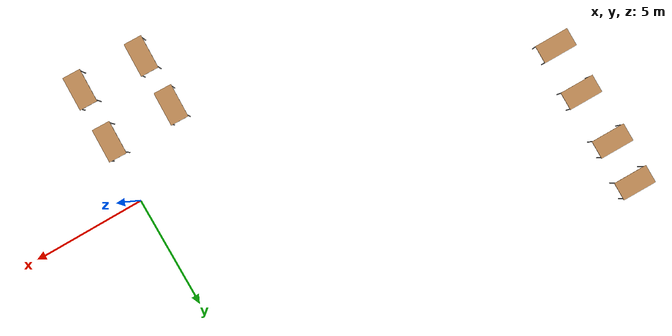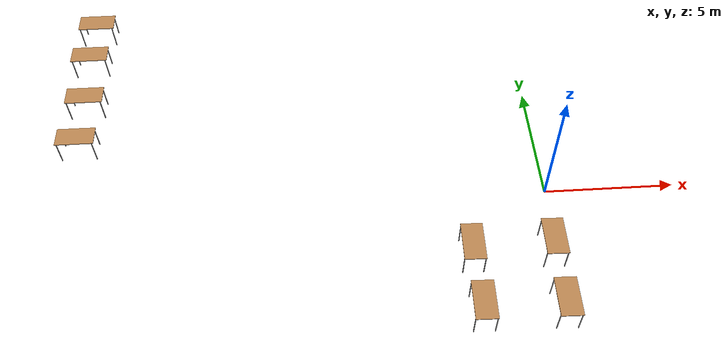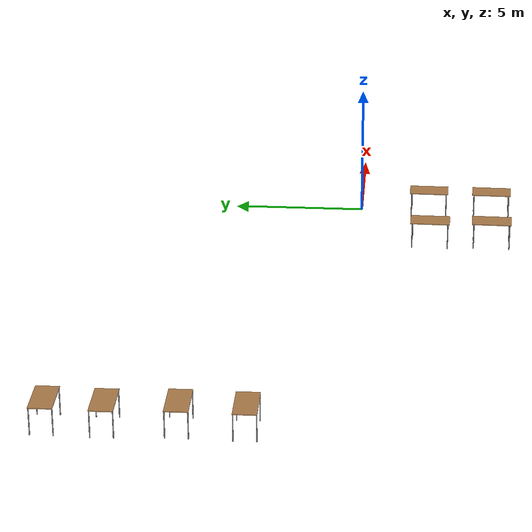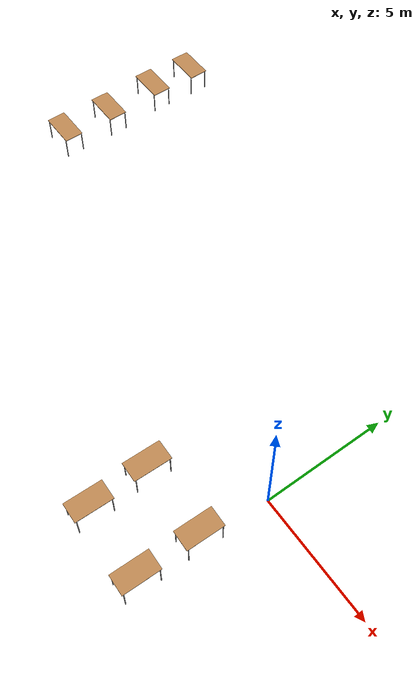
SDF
<sdf version="1.6">
 <model name="building">
  <model name="table">
   <static>1</static>
   <link name="link">
    <collision name="surface">
     <pose>0 0 1 0 -0 0</pose>
     <geometry><box><size>1.5 0.8 0.03</size></box></geometry>
     <surface><friction><ode><mu>0.6</mu><mu2>0.6</mu2></ode></friction></surface>
    </collision>
    <visual name="visual1">
     <pose>0 0 1 0 -0 0</pose>
     <geometry><box><size>1.5 0.8 0.03</size></box></geometry>
     <material>
      <script><uri>file://media/materials/scripts/gazebo.material</uri><name>Gazebo/Wood</name></script>
     </material>
    </visual>
    <collision name="front_left_leg">
     <pose>0.68 0.38 0.5 0 -0 0</pose>
     <geometry><cylinder><radius>0.02</radius><length>1</length></cylinder></geometry>
    </collision>
    <visual name="front_left_leg">
     <pose>0.68 0.38 0.5 0 -0 0</pose>
     <geometry><cylinder><radius>0.02</radius><length>1</length></cylinder></geometry>
     <material>
      <script><uri>file://media/materials/scripts/gazebo.material</uri><name>Gazebo/Grey</name></script>
     </material>
    </visual>
    <collision name="front_right_leg">
     <pose>0.68 -0.38 0.5 0 -0 0</pose>
     <geometry><cylinder><radius>0.02</radius><length>1</length></cylinder></geometry>
    </collision>
    <visual name="front_right_leg">
     <pose>0.68 -0.38 0.5 0 -0 0</pose>
     <geometry><cylinder><radius>0.02</radius><length>1</length></cylinder></geometry>
     <material>
      <script><uri>file://media/materials/scripts/gazebo.material</uri><name>Gazebo/Grey</name></script>
     </material>
    </visual>
    <collision name="back_right_leg">
     <pose>-0.68 -0.38 0.5 0 -0 0</pose>
     <geometry><cylinder><radius>0.02</radius><length>1</length></cylinder></geometry>
    </collision>
    <visual name="back_right_leg">
     <pose>-0.68 -0.38 0.5 0 -0 0</pose>
     <geometry><cylinder><radius>0.02</radius><length>1</length></cylinder></geometry>
     <material>
      <script><uri>file://media/materials/scripts/gazebo.material</uri><name>Gazebo/Grey</name></script>
     </material>
    </visual>
    <collision name="back_left_leg">
     <pose>-0.68 0.38 0.5 0 -0 0</pose>
     <geometry><cylinder><radius>0.02</radius><length>1</length></cylinder></geometry>
    </collision>
    <visual name="back_left_leg">
     <pose>-0.68 0.38 0.5 0 -0 0</pose>
     <geometry><cylinder><radius>0.02</radius><length>1</length></cylinder></geometry>
     <material>
      <script><uri>file://media/materials/scripts/gazebo.material</uri><name>Gazebo/Grey</name></script>
     </material>
    </visual>
   </link>
   <pose>-18.1294 9.58037 0 0 -0 0</pose>
  </model>
  <model name="table_0">
   <static>1</static>
   <link name="link">
    <collision name="surface">
     <pose>0 0 1 0 -0 0</pose>
     <geometry><box><size>1.5 0.8 0.03</size></box></geometry>
     <surface><friction><ode><mu>0.6</mu><mu2>0.6</mu2></ode></friction></surface>
    </collision>
    <visual name="visual1">
     <pose>0 0 1 0 -0 0</pose>
     <geometry><box><size>1.5 0.8 0.03</size></box></geometry>
     <material>
      <script><uri>file://media/materials/scripts/gazebo.material</uri><name>Gazebo/Wood</name></script>
     </material>
    </visual>
    <collision name="front_left_leg">
     <pose>0.68 0.38 0.5 0 -0 0</pose>
     <geometry><cylinder><radius>0.02</radius><length>1</length></cylinder></geometry>
    </collision>
    <visual name="front_left_leg">
     <pose>0.68 0.38 0.5 0 -0 0</pose>
     <geometry><cylinder><radius>0.02</radius><length>1</length></cylinder></geometry>
     <material>
      <script><uri>file://media/materials/scripts/gazebo.material</uri><name>Gazebo/Grey</name></script>
     </material>
    </visual>
    <collision name="front_right_leg">
     <pose>0.68 -0.38 0.5 0 -0 0</pose>
     <geometry><cylinder><radius>0.02</radius><length>1</length></cylinder></geometry>
    </collision>
    <visual name="front_right_leg">
     <pose>0.68 -0.38 0.5 0 -0 0</pose>
     <geometry><cylinder><radius>0.02</radius><length>1</length></cylinder></geometry>
     <material>
      <script><uri>file://media/materials/scripts/gazebo.material</uri><name>Gazebo/Grey</name></script>
     </material>
    </visual>
    <collision name="back_right_leg">
     <pose>-0.68 -0.38 0.5 0 -0 0</pose>
     <geometry><cylinder><radius>0.02</radius><length>1</length></cylinder></geometry>
    </collision>
    <visual name="back_right_leg">
     <pose>-0.68 -0.38 0.5 0 -0 0</pose>
     <geometry><cylinder><radius>0.02</radius><length>1</length></cylinder></geometry>
     <material>
      <script><uri>file://media/materials/scripts/gazebo.material</uri><name>Gazebo/Grey</name></script>
     </material>
    </visual>
    <collision name="back_left_leg">
     <pose>-0.68 0.38 0.5 0 -0 0</pose>
     <geometry><cylinder><radius>0.02</radius><length>1</length></cylinder></geometry>
    </collision>
    <visual name="back_left_leg">
     <pose>-0.68 0.38 0.5 0 -0 0</pose>
     <geometry><cylinder><radius>0.02</radius><length>1</length></cylinder></geometry>
     <material>
      <script><uri>file://media/materials/scripts/gazebo.material</uri><name>Gazebo/Grey</name></script>
     </material>
    </visual>
   </link>
   <pose>-18.188 7.6387 0 0 -0 0</pose>
  </model>
  <model name="table_1">
   <static>1</static>
   <link name="link">
    <collision name="surface">
     <pose>0 0 1 0 -0 0</pose>
     <geometry><box><size>1.5 0.8 0.03</size></box></geometry>
     <surface><friction><ode><mu>0.6</mu><mu2>0.6</mu2></ode></friction></surface>
    </collision>
    <visual name="visual1">
     <pose>0 0 1 0 -0 0</pose>
     <geometry><box><size>1.5 0.8 0.03</size></box></geometry>
     <material>
      <script><uri>file://media/materials/scripts/gazebo.material</uri><name>Gazebo/Wood</name></script>
     </material>
    </visual>
    <collision name="front_left_leg">
     <pose>0.68 0.38 0.5 0 -0 0</pose>
     <geometry><cylinder><radius>0.02</radius><length>1</length></cylinder></geometry>
    </collision>
    <visual name="front_left_leg">
     <pose>0.68 0.38 0.5 0 -0 0</pose>
     <geometry><cylinder><radius>0.02</radius><length>1</length></cylinder></geometry>
     <material>
      <script><uri>file://media/materials/scripts/gazebo.material</uri><name>Gazebo/Grey</name></script>
     </material>
    </visual>
    <collision name="front_right_leg">
     <pose>0.68 -0.38 0.5 0 -0 0</pose>
     <geometry><cylinder><radius>0.02</radius><length>1</length></cylinder></geometry>
    </collision>
    <visual name="front_right_leg">
     <pose>0.68 -0.38 0.5 0 -0 0</pose>
     <geometry><cylinder><radius>0.02</radius><length>1</length></cylinder></geometry>
     <material>
      <script><uri>file://media/materials/scripts/gazebo.material</uri><name>Gazebo/Grey</name></script>
     </material>
    </visual>
    <collision name="back_right_leg">
     <pose>-0.68 -0.38 0.5 0 -0 0</pose>
     <geometry><cylinder><radius>0.02</radius><length>1</length></cylinder></geometry>
    </collision>
    <visual name="back_right_leg">
     <pose>-0.68 -0.38 0.5 0 -0 0</pose>
     <geometry><cylinder><radius>0.02</radius><length>1</length></cylinder></geometry>
     <material>
      <script><uri>file://media/materials/scripts/gazebo.material</uri><name>Gazebo/Grey</name></script>
     </material>
    </visual>
    <collision name="back_left_leg">
     <pose>-0.68 0.38 0.5 0 -0 0</pose>
     <geometry><cylinder><radius>0.02</radius><length>1</length></cylinder></geometry>
    </collision>
    <visual name="back_left_leg">
     <pose>-0.68 0.38 0.5 0 -0 0</pose>
     <geometry><cylinder><radius>0.02</radius><length>1</length></cylinder></geometry>
     <material>
      <script><uri>file://media/materials/scripts/gazebo.material</uri><name>Gazebo/Grey</name></script>
     </material>
    </visual>
   </link>
   <pose>-18.0779 5.26567 0 0 -0 0</pose>
  </model>
  <model name="table_2">
   <static>1</static>
   <link name="link">
    <collision name="surface">
     <pose>0 0 1 0 -0 0</pose>
     <geometry><box><size>1.5 0.8 0.03</size></box></geometry>
     <surface><friction><ode><mu>0.6</mu><mu2>0.6</mu2></ode></friction></surface>
    </collision>
    <visual name="visual1">
     <pose>0 0 1 0 -0 0</pose>
     <geometry><box><size>1.5 0.8 0.03</size></box></geometry>
     <material>
      <script><uri>file://media/materials/scripts/gazebo.material</uri><name>Gazebo/Wood</name></script>
     </material>
    </visual>
    <collision name="front_left_leg">
     <pose>0.68 0.38 0.5 0 -0 0</pose>
     <geometry><cylinder><radius>0.02</radius><length>1</length></cylinder></geometry>
    </collision>
    <visual name="front_left_leg">
     <pose>0.68 0.38 0.5 0 -0 0</pose>
     <geometry><cylinder><radius>0.02</radius><length>1</length></cylinder></geometry>
     <material>
      <script><uri>file://media/materials/scripts/gazebo.material</uri><name>Gazebo/Grey</name></script>
     </material>
    </visual>
    <collision name="front_right_leg">
     <pose>0.68 -0.38 0.5 0 -0 0</pose>
     <geometry><cylinder><radius>0.02</radius><length>1</length></cylinder></geometry>
    </collision>
    <visual name="front_right_leg">
     <pose>0.68 -0.38 0.5 0 -0 0</pose>
     <geometry><cylinder><radius>0.02</radius><length>1</length></cylinder></geometry>
     <material>
      <script><uri>file://media/materials/scripts/gazebo.material</uri><name>Gazebo/Grey</name></script>
     </material>
    </visual>
    <collision name="back_right_leg">
     <pose>-0.68 -0.38 0.5 0 -0 0</pose>
     <geometry><cylinder><radius>0.02</radius><length>1</length></cylinder></geometry>
    </collision>
    <visual name="back_right_leg">
     <pose>-0.68 -0.38 0.5 0 -0 0</pose>
     <geometry><cylinder><radius>0.02</radius><length>1</length></cylinder></geometry>
     <material>
      <script><uri>file://media/materials/scripts/gazebo.material</uri><name>Gazebo/Grey</name></script>
     </material>
    </visual>
    <collision name="back_left_leg">
     <pose>-0.68 0.38 0.5 0 -0 0</pose>
     <geometry><cylinder><radius>0.02</radius><length>1</length></cylinder></geometry>
    </collision>
    <visual name="back_left_leg">
     <pose>-0.68 0.38 0.5 0 -0 0</pose>
     <geometry><cylinder><radius>0.02</radius><length>1</length></cylinder></geometry>
     <material>
      <script><uri>file://media/materials/scripts/gazebo.material</uri><name>Gazebo/Grey</name></script>
     </material>
    </visual>
   </link>
   <pose>-18.1279 3.08537 0 0 -0 0</pose>
  </model>
  <model name="table_3">
   <static>1</static>
   <link name="link">
    <collision name="surface">
     <pose>0 0 1 0 -0 0</pose>
     <geometry><box><size>1.5 0.8 0.03</size></box></geometry>
     <surface><friction><ode><mu>0.6</mu><mu2>0.6</mu2></ode></friction></surface>
    </collision>
    <visual name="visual1">
     <pose>0 0 1 0 -0 0</pose>
     <geometry><box><size>1.5 0.8 0.03</size></box></geometry>
     <material>
      <script><uri>file://media/materials/scripts/gazebo.material</uri><name>Gazebo/Wood</name></script>
     </material>
    </visual>
    <collision name="front_left_leg">
     <pose>0.68 0.38 0.5 0 -0 0</pose>
     <geometry><cylinder><radius>0.02</radius><length>1</length></cylinder></geometry>
    </collision>
    <visual name="front_left_leg">
     <pose>0.68 0.38 0.5 0 -0 0</pose>
     <geometry><cylinder><radius>0.02</radius><length>1</length></cylinder></geometry>
     <material>
      <script><uri>file://media/materials/scripts/gazebo.material</uri><name>Gazebo/Grey</name></script>
     </material>
    </visual>
    <collision name="front_right_leg">
     <pose>0.68 -0.38 0.5 0 -0 0</pose>
     <geometry><cylinder><radius>0.02</radius><length>1</length></cylinder></geometry>
    </collision>
    <visual name="front_right_leg">
     <pose>0.68 -0.38 0.5 0 -0 0</pose>
     <geometry><cylinder><radius>0.02</radius><length>1</length></cylinder></geometry>
     <material>
      <script><uri>file://media/materials/scripts/gazebo.material</uri><name>Gazebo/Grey</name></script>
     </material>
    </visual>
    <collision name="back_right_leg">
     <pose>-0.68 -0.38 0.5 0 -0 0</pose>
     <geometry><cylinder><radius>0.02</radius><length>1</length></cylinder></geometry>
    </collision>
    <visual name="back_right_leg">
     <pose>-0.68 -0.38 0.5 0 -0 0</pose>
     <geometry><cylinder><radius>0.02</radius><length>1</length></cylinder></geometry>
     <material>
      <script><uri>file://media/materials/scripts/gazebo.material</uri><name>Gazebo/Grey</name></script>
     </material>
    </visual>
    <collision name="back_left_leg">
     <pose>-0.68 0.38 0.5 0 -0 0</pose>
     <geometry><cylinder><radius>0.02</radius><length>1</length></cylinder></geometry>
    </collision>
    <visual name="back_left_leg">
     <pose>-0.68 0.38 0.5 0 -0 0</pose>
     <geometry><cylinder><radius>0.02</radius><length>1</length></cylinder></geometry>
     <material>
      <script><uri>file://media/materials/scripts/gazebo.material</uri><name>Gazebo/Grey</name></script>
     </material>
    </visual>
   </link>
   <pose>-3.15507 -5.06799 0 0 0 -1.59458</pose>
  </model>
  <model name="table_3_clone">
   <static>1</static>
   <link name="link">
    <collision name="surface">
     <pose>0 0 1 0 -0 0</pose>
     <geometry><box><size>1.5 0.8 0.03</size></box></geometry>
     <surface><friction><ode><mu>0.6</mu><mu2>0.6</mu2></ode></friction></surface>
    </collision>
    <visual name="visual1">
     <pose>0 0 1 0 -0 0</pose>
     <geometry><box><size>1.5 0.8 0.03</size></box></geometry>
     <material>
      <script><uri>file://media/materials/scripts/gazebo.material</uri><name>Gazebo/Wood</name></script>
     </material>
    </visual>
    <collision name="front_left_leg">
     <pose>0.68 0.38 0.5 0 -0 0</pose>
     <geometry><cylinder><radius>0.02</radius><length>1</length></cylinder></geometry>
    </collision>
    <visual name="front_left_leg">
     <pose>0.68 0.38 0.5 0 -0 0</pose>
     <geometry><cylinder><radius>0.02</radius><length>1</length></cylinder></geometry>
     <material>
      <script><uri>file://media/materials/scripts/gazebo.material</uri><name>Gazebo/Grey</name></script>
     </material>
    </visual>
    <collision name="front_right_leg">
     <pose>0.68 -0.38 0.5 0 -0 0</pose>
     <geometry><cylinder><radius>0.02</radius><length>1</length></cylinder></geometry>
    </collision>
    <visual name="front_right_leg">
     <pose>0.68 -0.38 0.5 0 -0 0</pose>
     <geometry><cylinder><radius>0.02</radius><length>1</length></cylinder></geometry>
     <material>
      <script><uri>file://media/materials/scripts/gazebo.material</uri><name>Gazebo/Grey</name></script>
     </material>
    </visual>
    <collision name="back_right_leg">
     <pose>-0.68 -0.38 0.5 0 -0 0</pose>
     <geometry><cylinder><radius>0.02</radius><length>1</length></cylinder></geometry>
    </collision>
    <visual name="back_right_leg">
     <pose>-0.68 -0.38 0.5 0 -0 0</pose>
     <geometry><cylinder><radius>0.02</radius><length>1</length></cylinder></geometry>
     <material>
      <script><uri>file://media/materials/scripts/gazebo.material</uri><name>Gazebo/Grey</name></script>
     </material>
    </visual>
    <collision name="back_left_leg">
     <pose>-0.68 0.38 0.5 0 -0 0</pose>
     <geometry><cylinder><radius>0.02</radius><length>1</length></cylinder></geometry>
    </collision>
    <visual name="back_left_leg">
     <pose>-0.68 0.38 0.5 0 -0 0</pose>
     <geometry><cylinder><radius>0.02</radius><length>1</length></cylinder></geometry>
     <material>
      <script><uri>file://media/materials/scripts/gazebo.material</uri><name>Gazebo/Grey</name></script>
     </material>
    </visual>
   </link>
   <pose>-3.21695 -2.71346 0 0 0 -1.59458</pose>
  </model>
  <model name="table_3_clone_0">
   <static>1</static>
   <link name="link">
    <collision name="surface">
     <pose>0 0 1 0 -0 0</pose>
     <geometry><box><size>1.5 0.8 0.03</size></box></geometry>
     <surface><friction><ode><mu>0.6</mu><mu2>0.6</mu2></ode></friction></surface>
    </collision>
    <visual name="visual1">
     <pose>0 0 1 0 -0 0</pose>
     <geometry><box><size>1.5 0.8 0.03</size></box></geometry>
     <material>
      <script><uri>file://media/materials/scripts/gazebo.material</uri><name>Gazebo/Wood</name></script>
     </material>
    </visual>
    <collision name="front_left_leg">
     <pose>0.68 0.38 0.5 0 -0 0</pose>
     <geometry><cylinder><radius>0.02</radius><length>1</length></cylinder></geometry>
    </collision>
    <visual name="front_left_leg">
     <pose>0.68 0.38 0.5 0 -0 0</pose>
     <geometry><cylinder><radius>0.02</radius><length>1</length></cylinder></geometry>
     <material>
      <script><uri>file://media/materials/scripts/gazebo.material</uri><name>Gazebo/Grey</name></script>
     </material>
    </visual>
    <collision name="front_right_leg">
     <pose>0.68 -0.38 0.5 0 -0 0</pose>
     <geometry><cylinder><radius>0.02</radius><length>1</length></cylinder></geometry>
    </collision>
    <visual name="front_right_leg">
     <pose>0.68 -0.38 0.5 0 -0 0</pose>
     <geometry><cylinder><radius>0.02</radius><length>1</length></cylinder></geometry>
     <material>
      <script><uri>file://media/materials/scripts/gazebo.material</uri><name>Gazebo/Grey</name></script>
     </material>
    </visual>
    <collision name="back_right_leg">
     <pose>-0.68 -0.38 0.5 0 -0 0</pose>
     <geometry><cylinder><radius>0.02</radius><length>1</length></cylinder></geometry>
    </collision>
    <visual name="back_right_leg">
     <pose>-0.68 -0.38 0.5 0 -0 0</pose>
     <geometry><cylinder><radius>0.02</radius><length>1</length></cylinder></geometry>
     <material>
      <script><uri>file://media/materials/scripts/gazebo.material</uri><name>Gazebo/Grey</name></script>
     </material>
    </visual>
    <collision name="back_left_leg">
     <pose>-0.68 0.38 0.5 0 -0 0</pose>
     <geometry><cylinder><radius>0.02</radius><length>1</length></cylinder></geometry>
    </collision>
    <visual name="back_left_leg">
     <pose>-0.68 0.38 0.5 0 -0 0</pose>
     <geometry><cylinder><radius>0.02</radius><length>1</length></cylinder></geometry>
     <material>
      <script><uri>file://media/materials/scripts/gazebo.material</uri><name>Gazebo/Grey</name></script>
     </material>
    </visual>
   </link>
   <pose>-0.282863 -5.12208 0 0 0 -1.59458</pose>
  </model>
  <model name="table_3_clone_1">
   <static>1</static>
   <link name="link">
    <collision name="surface">
     <pose>0 0 1 0 -0 0</pose>
     <geometry><box><size>1.5 0.8 0.03</size></box></geometry>
     <surface><friction><ode><mu>0.6</mu><mu2>0.6</mu2></ode></friction></surface>
    </collision>
    <visual name="visual1">
     <pose>0 0 1 0 -0 0</pose>
     <geometry><box><size>1.5 0.8 0.03</size></box></geometry>
     <material>
      <script><uri>file://media/materials/scripts/gazebo.material</uri><name>Gazebo/Wood</name></script>
     </material>
    </visual>
    <collision name="front_left_leg">
     <pose>0.68 0.38 0.5 0 -0 0</pose>
     <geometry><cylinder><radius>0.02</radius><length>1</length></cylinder></geometry>
    </collision>
    <visual name="front_left_leg">
     <pose>0.68 0.38 0.5 0 -0 0</pose>
     <geometry><cylinder><radius>0.02</radius><length>1</length></cylinder></geometry>
     <material>
      <script><uri>file://media/materials/scripts/gazebo.material</uri><name>Gazebo/Grey</name></script>
     </material>
    </visual>
    <collision name="front_right_leg">
     <pose>0.68 -0.38 0.5 0 -0 0</pose>
     <geometry><cylinder><radius>0.02</radius><length>1</length></cylinder></geometry>
    </collision>
    <visual name="front_right_leg">
     <pose>0.68 -0.38 0.5 0 -0 0</pose>
     <geometry><cylinder><radius>0.02</radius><length>1</length></cylinder></geometry>
     <material>
      <script><uri>file://media/materials/scripts/gazebo.material</uri><name>Gazebo/Grey</name></script>
     </material>
    </visual>
    <collision name="back_right_leg">
     <pose>-0.68 -0.38 0.5 0 -0 0</pose>
     <geometry><cylinder><radius>0.02</radius><length>1</length></cylinder></geometry>
    </collision>
    <visual name="back_right_leg">
     <pose>-0.68 -0.38 0.5 0 -0 0</pose>
     <geometry><cylinder><radius>0.02</radius><length>1</length></cylinder></geometry>
     <material>
      <script><uri>file://media/materials/scripts/gazebo.material</uri><name>Gazebo/Grey</name></script>
     </material>
    </visual>
    <collision name="back_left_leg">
     <pose>-0.68 0.38 0.5 0 -0 0</pose>
     <geometry><cylinder><radius>0.02</radius><length>1</length></cylinder></geometry>
    </collision>
    <visual name="back_left_leg">
     <pose>-0.68 0.38 0.5 0 -0 0</pose>
     <geometry><cylinder><radius>0.02</radius><length>1</length></cylinder></geometry>
     <material>
      <script><uri>file://media/materials/scripts/gazebo.material</uri><name>Gazebo/Grey</name></script>
     </material>
    </visual>
   </link>
   <pose>-0.263102 -2.66567 0 0 0 -1.59458</pose>
  </model>
  <static>0</static>
 </model>
</sdf>
